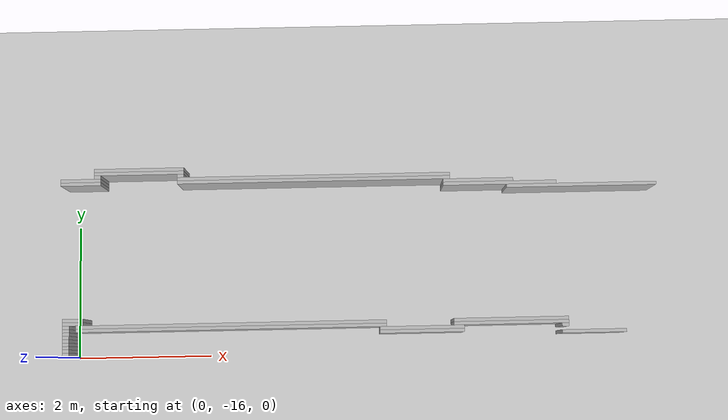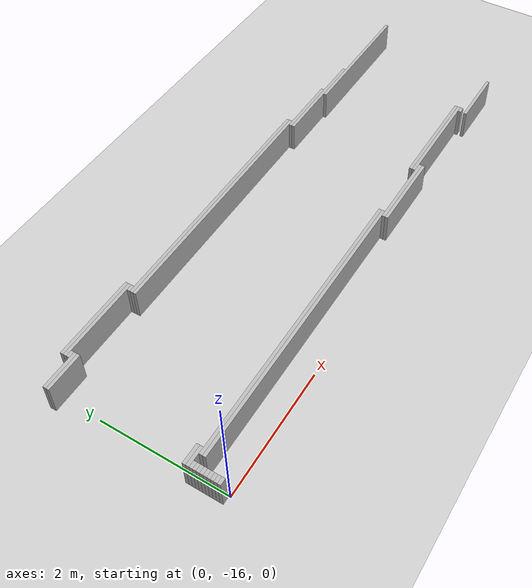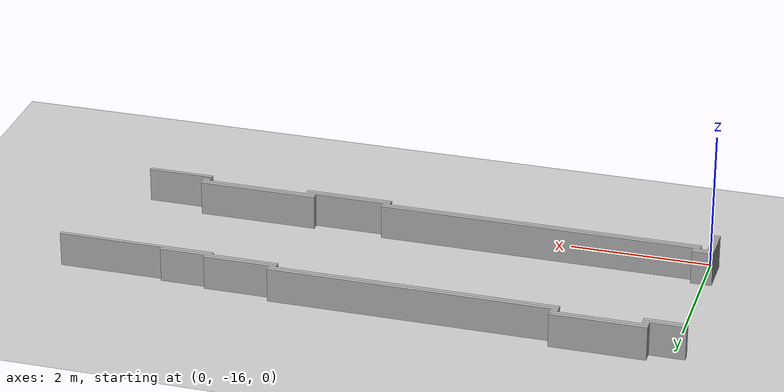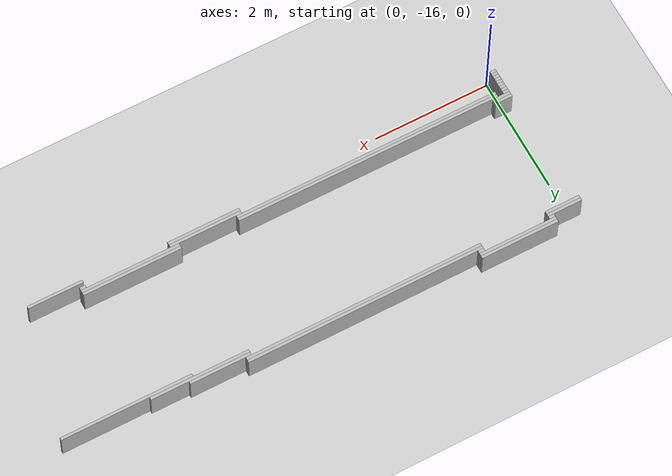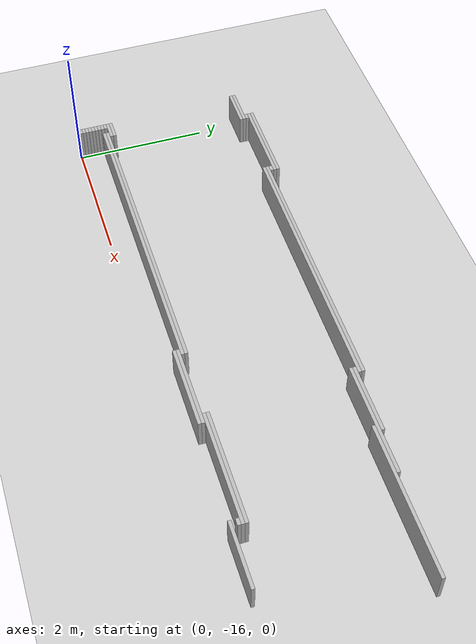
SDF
<sdf version="1.6">
 <world name="optimized_map_world">
  <include><uri>model://sun</uri></include>
  <include><uri>model://ground_plane</uri></include>
  <model name="obstacle_1088">
   <static>true</static>
   <link name="link">
    <collision name="collision"><geometry><box><size>1.35 0.05 0.5</size></box></geometry></collision>
    <visual name="visual"><geometry><box><size>1.35 0.05 0.5</size></box></geometry></visual>
   </link>
   <pose>1.0 -13.2 0.25 0 0 0</pose>
  </model>
  <model name="obstacle_1093">
   <static>true</static>
   <link name="link">
    <collision name="collision"><geometry><box><size>1.35 0.05 0.5</size></box></geometry></collision>
    <visual name="visual"><geometry><box><size>1.35 0.05 0.5</size></box></geometry></visual>
   </link>
   <pose>1.0 -13.25 0.25 0 0 0</pose>
  </model>
  <model name="obstacle_1098">
   <static>true</static>
   <link name="link">
    <collision name="collision"><geometry><box><size>0.1 0.05 0.5</size></box></geometry></collision>
    <visual name="visual"><geometry><box><size>0.1 0.05 0.5</size></box></geometry></visual>
   </link>
   <pose>0.375 -13.3 0.25 0 0 0</pose>
  </model>
  <model name="obstacle_1099">
   <static>true</static>
   <link name="link">
    <collision name="collision"><geometry><box><size>0.1 0.05 0.5</size></box></geometry></collision>
    <visual name="visual"><geometry><box><size>0.1 0.05 0.5</size></box></geometry></visual>
   </link>
   <pose>1.625 -13.3 0.25 0 0 0</pose>
  </model>
  <model name="obstacle_1104">
   <static>true</static>
   <link name="link">
    <collision name="collision">
     <geometry><box><size>0.6000000000000001 0.05 0.5</size></box></geometry>
    </collision>
    <visual name="visual"><geometry><box><size>0.6000000000000001 0.05 0.5</size></box></geometry></visual>
   </link>
   <pose>0.125 -13.350000000000001 0.25 0 0 0</pose>
  </model>
  <model name="obstacle_1105">
   <static>true</static>
   <link name="link">
    <collision name="collision">
     <geometry><box><size>4.1000000000000005 0.05 0.5</size></box></geometry>
    </collision>
    <visual name="visual"><geometry><box><size>4.1000000000000005 0.05 0.5</size></box></geometry></visual>
   </link>
   <pose>3.6250000000000036 -13.350000000000001 0.25 0 0 0</pose>
  </model>
  <model name="obstacle_1110">
   <static>true</static>
   <link name="link">
    <collision name="collision">
     <geometry><box><size>0.6000000000000001 0.05 0.5</size></box></geometry>
    </collision>
    <visual name="visual"><geometry><box><size>0.6000000000000001 0.05 0.5</size></box></geometry></visual>
   </link>
   <pose>0.125 -13.4 0.25 0 0 0</pose>
  </model>
  <model name="obstacle_1111">
   <static>true</static>
   <link name="link">
    <collision name="collision">
     <geometry><box><size>4.1000000000000005 0.05 0.5</size></box></geometry>
    </collision>
    <visual name="visual"><geometry><box><size>4.1000000000000005 0.05 0.5</size></box></geometry></visual>
   </link>
   <pose>3.6250000000000036 -13.4 0.25 0 0 0</pose>
  </model>
  <model name="obstacle_1117">
   <static>true</static>
   <link name="link">
    <collision name="collision"><geometry><box><size>1.05 0.05 0.5</size></box></geometry></collision>
    <visual name="visual"><geometry><box><size>1.05 0.05 0.5</size></box></geometry></visual>
   </link>
   <pose>6.100000000000001 -13.45 0.25 0 0 0</pose>
  </model>
  <model name="obstacle_1123">
   <static>true</static>
   <link name="link">
    <collision name="collision">
     <geometry><box><size>1.7000000000000002 0.05 0.5</size></box></geometry>
    </collision>
    <visual name="visual"><geometry><box><size>1.7000000000000002 0.05 0.5</size></box></geometry></visual>
   </link>
   <pose>6.425000000000001 -13.5 0.25 0 0 0</pose>
  </model>
  <model name="obstacle_1129">
   <static>true</static>
   <link name="link">
    <collision name="collision"><geometry><box><size>2.25 0.05 0.5</size></box></geometry></collision>
    <visual name="visual"><geometry><box><size>2.25 0.05 0.5</size></box></geometry></visual>
   </link>
   <pose>7.650000000000002 -13.55 0.25 0 0 0</pose>
  </model>
  <model name="obstacle_1231">
   <static>true</static>
   <link name="link">
    <collision name="collision">
     <geometry><box><size>0.30000000000000004 0.05 0.5</size></box></geometry>
    </collision>
    <visual name="visual"><geometry><box><size>0.30000000000000004 0.05 0.5</size></box></geometry></visual>
   </link>
   <pose>0.02500000000000213 -15.45 0.25 0 0 0</pose>
  </model>
  <model name="obstacle_1234">
   <static>true</static>
   <link name="link">
    <collision name="collision">
     <geometry><box><size>0.30000000000000004 0.05 0.5</size></box></geometry>
    </collision>
    <visual name="visual"><geometry><box><size>0.30000000000000004 0.05 0.5</size></box></geometry></visual>
   </link>
   <pose>0.02500000000000213 -15.5 0.25 0 0 0</pose>
  </model>
  <model name="obstacle_1237">
   <static>true</static>
   <link name="link">
    <collision name="collision"><geometry><box><size>0.1 0.05 0.5</size></box></geometry></collision>
    <visual name="visual"><geometry><box><size>0.1 0.05 0.5</size></box></geometry></visual>
   </link>
   <pose>-0.07499999999999929 -15.55 0.25 0 0 0</pose>
  </model>
  <model name="obstacle_1238">
   <static>true</static>
   <link name="link">
    <collision name="collision">
     <geometry><box><size>4.6000000000000005 0.05 0.5</size></box></geometry>
    </collision>
    <visual name="visual"><geometry><box><size>4.6000000000000005 0.05 0.5</size></box></geometry></visual>
   </link>
   <pose>2.375 -15.55 0.25 0 0 0</pose>
  </model>
  <model name="obstacle_1239">
   <static>true</static>
   <link name="link">
    <collision name="collision">
     <geometry><box><size>1.7000000000000002 0.05 0.5</size></box></geometry>
    </collision>
    <visual name="visual"><geometry><box><size>1.7000000000000002 0.05 0.5</size></box></geometry></visual>
   </link>
   <pose>6.525000000000002 -15.55 0.25 0 0 0</pose>
  </model>
  <model name="obstacle_1242">
   <static>true</static>
   <link name="link">
    <collision name="collision"><geometry><box><size>0.1 0.05 0.5</size></box></geometry></collision>
    <visual name="visual"><geometry><box><size>0.1 0.05 0.5</size></box></geometry></visual>
   </link>
   <pose>-0.07499999999999929 -15.600000000000001 0.25 0 0 0</pose>
  </model>
  <model name="obstacle_1243">
   <static>true</static>
   <link name="link">
    <collision name="collision">
     <geometry><box><size>4.6000000000000005 0.05 0.5</size></box></geometry>
    </collision>
    <visual name="visual"><geometry><box><size>4.6000000000000005 0.05 0.5</size></box></geometry></visual>
   </link>
   <pose>2.375 -15.600000000000001 0.25 0 0 0</pose>
  </model>
  <model name="obstacle_1244">
   <static>true</static>
   <link name="link">
    <collision name="collision">
     <geometry><box><size>1.7000000000000002 0.05 0.5</size></box></geometry>
    </collision>
    <visual name="visual"><geometry><box><size>1.7000000000000002 0.05 0.5</size></box></geometry></visual>
   </link>
   <pose>6.525000000000002 -15.600000000000001 0.25 0 0 0</pose>
  </model>
  <model name="obstacle_1247">
   <static>true</static>
   <link name="link">
    <collision name="collision"><geometry><box><size>0.1 0.05 0.5</size></box></geometry></collision>
    <visual name="visual"><geometry><box><size>0.1 0.05 0.5</size></box></geometry></visual>
   </link>
   <pose>-0.07499999999999929 -15.65 0.25 0 0 0</pose>
  </model>
  <model name="obstacle_1248">
   <static>true</static>
   <link name="link">
    <collision name="collision"><geometry><box><size>1.25 0.05 0.5</size></box></geometry></collision>
    <visual name="visual"><geometry><box><size>1.25 0.05 0.5</size></box></geometry></visual>
   </link>
   <pose>5.200000000000003 -15.65 0.25 0 0 0</pose>
  </model>
  <model name="obstacle_1249">
   <static>true</static>
   <link name="link">
    <collision name="collision"><geometry><box><size>0.1 0.05 0.5</size></box></geometry></collision>
    <visual name="visual"><geometry><box><size>0.1 0.05 0.5</size></box></geometry></visual>
   </link>
   <pose>7.325000000000003 -15.65 0.25 0 0 0</pose>
  </model>
  <model name="obstacle_1253">
   <static>true</static>
   <link name="link">
    <collision name="collision"><geometry><box><size>0.1 0.05 0.5</size></box></geometry></collision>
    <visual name="visual"><geometry><box><size>0.1 0.05 0.5</size></box></geometry></visual>
   </link>
   <pose>-0.07499999999999929 -15.7 0.25 0 0 0</pose>
  </model>
  <model name="obstacle_1254">
   <static>true</static>
   <link name="link">
    <collision name="collision"><geometry><box><size>1.25 0.05 0.5</size></box></geometry></collision>
    <visual name="visual"><geometry><box><size>1.25 0.05 0.5</size></box></geometry></visual>
   </link>
   <pose>5.200000000000003 -15.7 0.25 0 0 0</pose>
  </model>
  <model name="obstacle_1259">
   <static>true</static>
   <link name="link">
    <collision name="collision"><geometry><box><size>0.1 0.05 0.5</size></box></geometry></collision>
    <visual name="visual"><geometry><box><size>0.1 0.05 0.5</size></box></geometry></visual>
   </link>
   <pose>-0.07499999999999929 -15.75 0.25 0 0 0</pose>
  </model>
  <model name="obstacle_1260">
   <static>true</static>
   <link name="link">
    <collision name="collision">
     <geometry><box><size>0.9500000000000001 0.05 0.5</size></box></geometry>
    </collision>
    <visual name="visual"><geometry><box><size>0.9500000000000001 0.05 0.5</size></box></geometry></visual>
   </link>
   <pose>7.7500000000000036 -15.75 0.25 0 0 0</pose>
  </model>
  <model name="obstacle_1265">
   <static>true</static>
   <link name="link">
    <collision name="collision"><geometry><box><size>0.1 0.05 0.5</size></box></geometry></collision>
    <visual name="visual"><geometry><box><size>0.1 0.05 0.5</size></box></geometry></visual>
   </link>
   <pose>-0.07499999999999929 -15.8 0.25 0 0 0</pose>
  </model>
  <model name="obstacle_1271">
   <static>true</static>
   <link name="link">
    <collision name="collision"><geometry><box><size>0.1 0.05 0.5</size></box></geometry></collision>
    <visual name="visual"><geometry><box><size>0.1 0.05 0.5</size></box></geometry></visual>
   </link>
   <pose>-0.07499999999999929 -15.850000000000001 0.25 0 0 0</pose>
  </model>
  <model name="obstacle_1277">
   <static>true</static>
   <link name="link">
    <collision name="collision"><geometry><box><size>0.1 0.05 0.5</size></box></geometry></collision>
    <visual name="visual"><geometry><box><size>0.1 0.05 0.5</size></box></geometry></visual>
   </link>
   <pose>-0.07499999999999929 -15.9 0.25 0 0 0</pose>
  </model>
  <model name="obstacle_1282">
   <static>true</static>
   <link name="link">
    <collision name="collision"><geometry><box><size>0.1 0.05 0.5</size></box></geometry></collision>
    <visual name="visual"><geometry><box><size>0.1 0.05 0.5</size></box></geometry></visual>
   </link>
   <pose>-0.07499999999999929 -15.95 0.25 0 0 0</pose>
  </model>
 </world>
</sdf>
